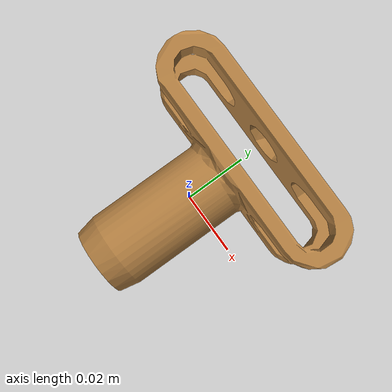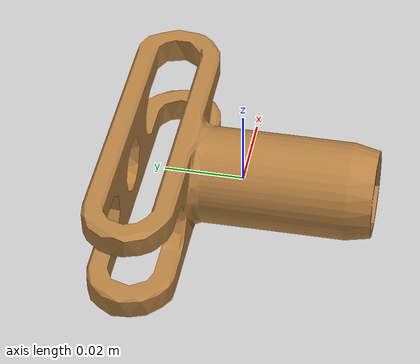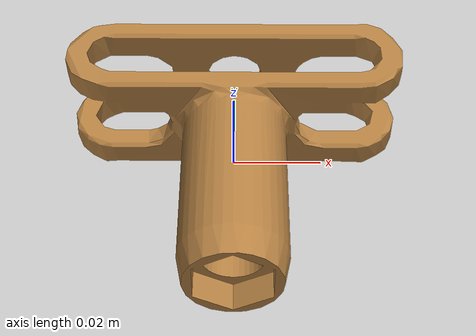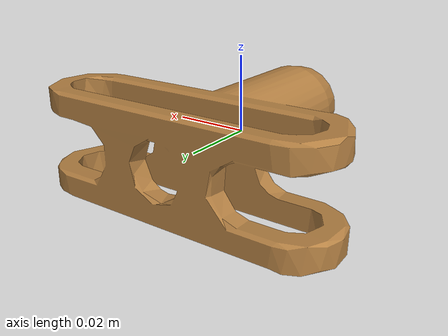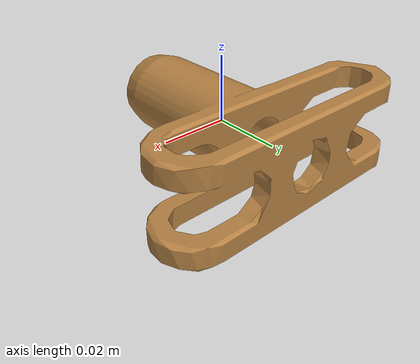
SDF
<?xml version="1.0" ?>
<sdf version="1.4">
	<model name='wrench_0_08m'>
		<pose> 0 0 0 0 0 0 </pose>
		<link name="link">
			<inertial>
				<mass> 0.09998 </mass>
				<pose> 0 0.00713 0 0 0 0 </pose>
				<inertia>
					<ixx> 0.00005 </ixx>
					<ixy> 0.0 </ixy>
					<ixz> 0.0 </ixz>
					<iyy> 0.00003 </iyy>
					<iyz> 0 </iyz>
					<izz> 0.00007 </izz>
				</inertia>
			</inertial>

			<collision name="collision">
				<geometry>
					<mesh>
						<uri> /home/kevin/research/gazebo/evaluation_platform/models/wrench_0_08m/meshes/wrench_0_08m_collision.dae </uri>
						<scale> 1 1 1 </scale>
					</mesh>
				</geometry>
				<surface>
					<bounce>
						<restitution_coefficient> 0.1 </restitution_coefficient>
					</bounce>
					<friction>
						<ode>
							<mu> 0.9 </mu>
							<mu2> 0.9 </mu2>
						</ode>
					</friction>

				</surface>
			</collision>

			<visual name="visual">
				<material>
					<ambient> 0.71 0.506 0.2627 1 </ambient>
					<diffuse> 0.71 0.506 0.2627 1 </diffuse>
				</material>
				<geometry>
					<mesh>
						<uri> /home/kevin/research/gazebo/evaluation_platform/models/wrench_0_08m/meshes/wrench_0_08m_1000faces.dae </uri>
						<scale> 1 1 1 </scale>
					</mesh>
				</geometry>
			</visual>
		</link>
	</model>
</sdf>
